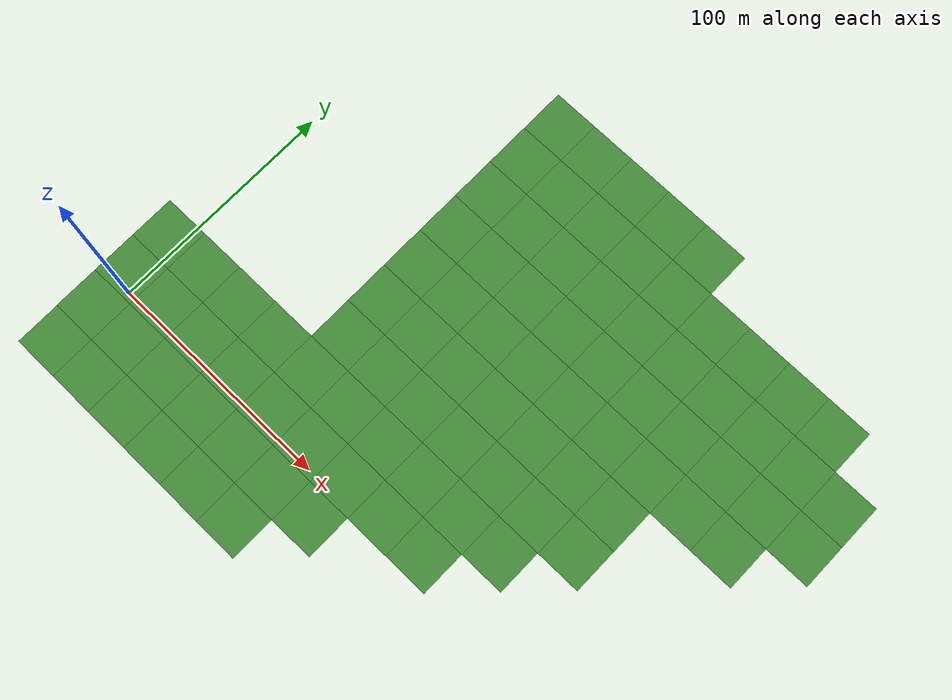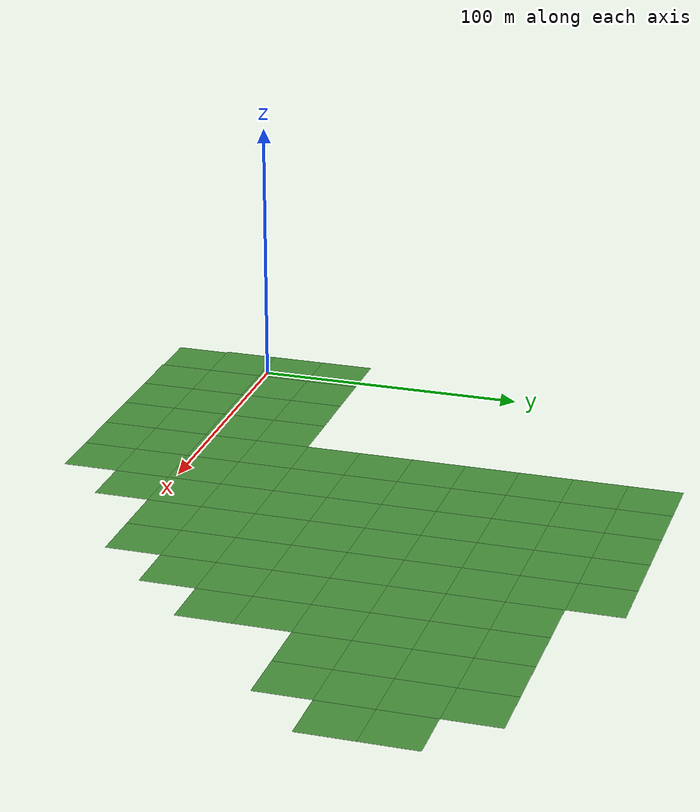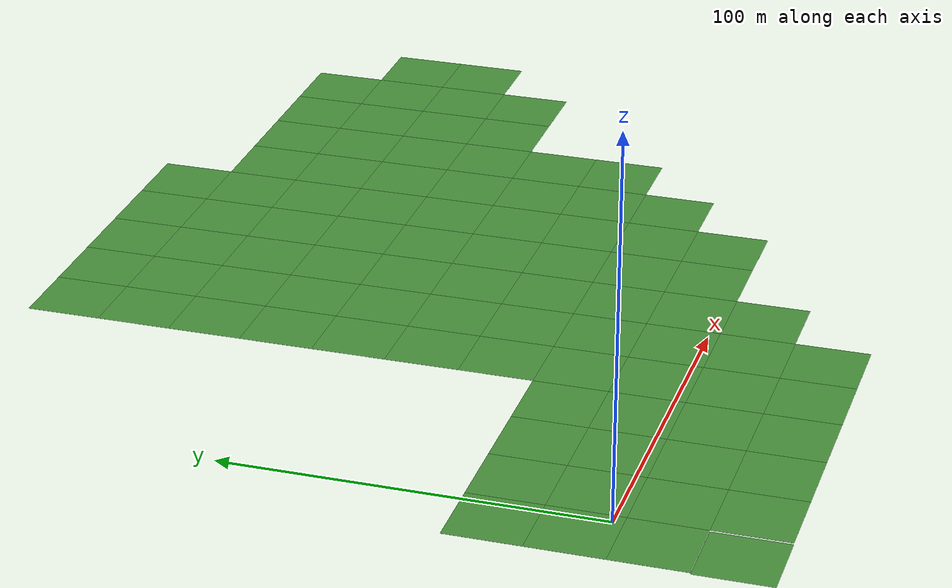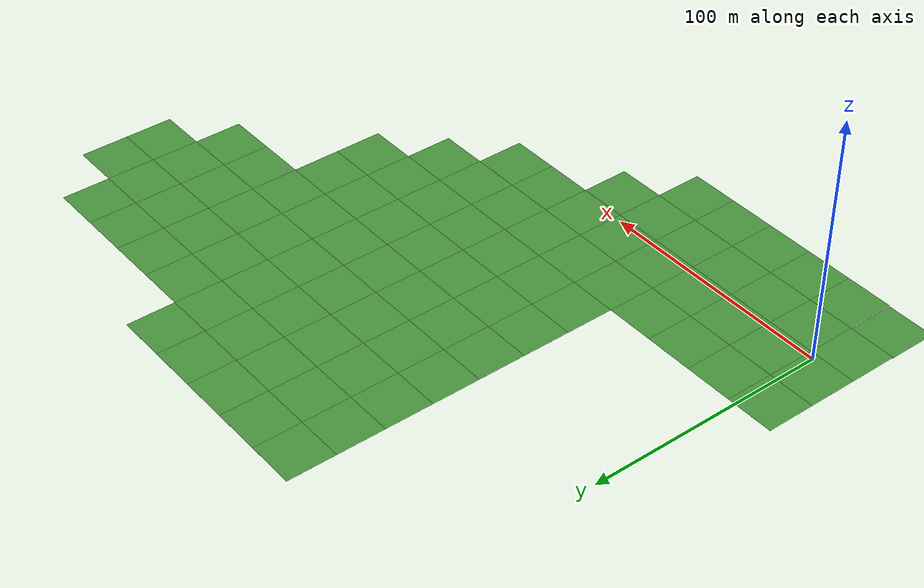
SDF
<sdf version="1.6">
 <world name="default">
  <model name="grass_plane_4">
   <static>1</static>
   <link name="link">
    <collision name="collision">
     <geometry><plane><normal>0 0 1</normal><size>500 500</size></plane></geometry>
     <surface><friction><ode><mu>0.5</mu><mu2>0.5</mu2></ode></friction></surface>
    </collision>
    <visual name="visual_0">
     <pose>-40 -40 0 0 -0 0</pose>
     <cast_shadows>0</cast_shadows>
     <geometry><plane><normal>0 0 1</normal><size>20 20</size></plane></geometry>
     <material>
      <script>
       <uri>model://grass_plane/materials/scripts</uri>
       <uri>model://grass_plane/materials/textures</uri>
       <name>vrc/grass</name>
      </script>
     </material>
    </visual>
    <visual name="visual_1">
     <pose>-20 -40 0 0 -0 0</pose>
     <cast_shadows>0</cast_shadows>
     <geometry><plane><normal>0 0 1</normal><size>20 20</size></plane></geometry>
     <material>
      <script>
       <uri>model://grass_plane/materials/scripts</uri>
       <uri>model://grass_plane/materials/textures</uri>
       <name>vrc/grass</name>
      </script>
     </material>
    </visual>
    <visual name="visual_2">
     <pose>0 -40 0 0 -0 0</pose>
     <cast_shadows>0</cast_shadows>
     <geometry><plane><normal>0 0 1</normal><size>20 20</size></plane></geometry>
     <material>
      <script>
       <uri>model://grass_plane/materials/scripts</uri>
       <uri>model://grass_plane/materials/textures</uri>
       <name>vrc/grass</name>
      </script>
     </material>
    </visual>
    <visual name="visual_3">
     <pose>20 -40 0 0 -0 0</pose>
     <cast_shadows>0</cast_shadows>
     <geometry><plane><normal>0 0 1</normal><size>20 20</size></plane></geometry>
     <material>
      <script>
       <uri>model://grass_plane/materials/scripts</uri>
       <uri>model://grass_plane/materials/textures</uri>
       <name>vrc/grass</name>
      </script>
     </material>
    </visual>
    <visual name="visual_4">
     <pose>40 -40 0 0 -0 0</pose>
     <cast_shadows>0</cast_shadows>
     <geometry><plane><normal>0 0 1</normal><size>20 20</size></plane></geometry>
     <material>
      <script>
       <uri>model://grass_plane/materials/scripts</uri>
       <uri>model://grass_plane/materials/textures</uri>
       <name>vrc/grass</name>
      </script>
     </material>
    </visual>
    <visual name="visual_5">
     <pose>60 -40 0 0 -0 0</pose>
     <cast_shadows>0</cast_shadows>
     <geometry><plane><normal>0 0 1</normal><size>20 20</size></plane></geometry>
     <material>
      <script>
       <uri>model://grass_plane/materials/scripts</uri>
       <uri>model://grass_plane/materials/textures</uri>
       <name>vrc/grass</name>
      </script>
     </material>
    </visual>
    <visual name="visual_6">
     <pose>-40 -20 0 0 -0 0</pose>
     <cast_shadows>0</cast_shadows>
     <geometry><plane><normal>0 0 1</normal><size>20 20</size></plane></geometry>
     <material>
      <script>
       <uri>model://grass_plane/materials/scripts</uri>
       <uri>model://grass_plane/materials/textures</uri>
       <name>vrc/grass</name>
      </script>
     </material>
    </visual>
    <visual name="visual_7">
     <pose>-20 -20 0 0 -0 0</pose>
     <cast_shadows>0</cast_shadows>
     <geometry><plane><normal>0 0 1</normal><size>20 20</size></plane></geometry>
     <material>
      <script>
       <uri>model://grass_plane/materials/scripts</uri>
       <uri>model://grass_plane/materials/textures</uri>
       <name>vrc/grass</name>
      </script>
     </material>
    </visual>
    <visual name="visual_8">
     <pose>0 -20 0 0 -0 0</pose>
     <cast_shadows>0</cast_shadows>
     <geometry><plane><normal>0 0 1</normal><size>20 20</size></plane></geometry>
     <material>
      <script>
       <uri>model://grass_plane/materials/scripts</uri>
       <uri>model://grass_plane/materials/textures</uri>
       <name>vrc/grass</name>
      </script>
     </material>
    </visual>
    <visual name="visual_9">
     <pose>20 -20 0 0 -0 0</pose>
     <cast_shadows>0</cast_shadows>
     <geometry><plane><normal>0 0 1</normal><size>20 20</size></plane></geometry>
     <material>
      <script>
       <uri>model://grass_plane/materials/scripts</uri>
       <uri>model://grass_plane/materials/textures</uri>
       <name>vrc/grass</name>
      </script>
     </material>
    </visual>
    <visual name="visual_10">
     <pose>40 -20 0 0 -0 0</pose>
     <cast_shadows>0</cast_shadows>
     <geometry><plane><normal>0 0 1</normal><size>20 20</size></plane></geometry>
     <material>
      <script>
       <uri>model://grass_plane/materials/scripts</uri>
       <uri>model://grass_plane/materials/textures</uri>
       <name>vrc/grass</name>
      </script>
     </material>
    </visual>
    <visual name="visual_11">
     <pose>60 -20 0 0 -0 0</pose>
     <cast_shadows>0</cast_shadows>
     <geometry><plane><normal>0 0 1</normal><size>20 20</size></plane></geometry>
     <material>
      <script>
       <uri>model://grass_plane/materials/scripts</uri>
       <uri>model://grass_plane/materials/textures</uri>
       <name>vrc/grass</name>
      </script>
     </material>
    </visual>
    <visual name="visual_12">
     <pose>80 -20 0 0 -0 0</pose>
     <cast_shadows>0</cast_shadows>
     <geometry><plane><normal>0 0 1</normal><size>20 20</size></plane></geometry>
     <material>
      <script>
       <uri>model://grass_plane/materials/scripts</uri>
       <uri>model://grass_plane/materials/textures</uri>
       <name>vrc/grass</name>
      </script>
     </material>
    </visual>
    <visual name="visual_13">
     <pose>-40 0 0 0 -0 0</pose>
     <cast_shadows>0</cast_shadows>
     <geometry><plane><normal>0 0 1</normal><size>20 20</size></plane></geometry>
     <material>
      <script>
       <uri>model://grass_plane/materials/scripts</uri>
       <uri>model://grass_plane/materials/textures</uri>
       <name>vrc/grass</name>
      </script>
     </material>
    </visual>
    <visual name="visual_14">
     <pose>-20 0 0 0 -0 0</pose>
     <cast_shadows>0</cast_shadows>
     <geometry><plane><normal>0 0 1</normal><size>20 20</size></plane></geometry>
     <material>
      <script>
       <uri>model://grass_plane/materials/scripts</uri>
       <uri>model://grass_plane/materials/textures</uri>
       <name>vrc/grass</name>
      </script>
     </material>
    </visual>
    <visual name="visual_15">
     <cast_shadows>0</cast_shadows>
     <geometry><plane><normal>0 0 1</normal><size>20 20</size></plane></geometry>
     <material>
      <script>
       <uri>model://grass_plane/materials/scripts</uri>
       <uri>model://grass_plane/materials/textures</uri>
       <name>vrc/grass</name>
      </script>
     </material>
    </visual>
    <visual name="visual_16">
     <pose>20 0 0 0 -0 0</pose>
     <cast_shadows>0</cast_shadows>
     <geometry><plane><normal>0 0 1</normal><size>20 20</size></plane></geometry>
     <material>
      <script>
       <uri>model://grass_plane/materials/scripts</uri>
       <uri>model://grass_plane/materials/textures</uri>
       <name>vrc/grass</name>
      </script>
     </material>
    </visual>
    <visual name="visual_17">
     <pose>40 0 0 0 -0 0</pose>
     <cast_shadows>0</cast_shadows>
     <geometry><plane><normal>0 0 1</normal><size>20 20</size></plane></geometry>
     <material>
      <script>
       <uri>model://grass_plane/materials/scripts</uri>
       <uri>model://grass_plane/materials/textures</uri>
       <name>vrc/grass</name>
      </script>
     </material>
    </visual>
    <visual name="visual_18">
     <pose>60 0 0 0 -0 0</pose>
     <cast_shadows>0</cast_shadows>
     <geometry><plane><normal>0 0 1</normal><size>20 20</size></plane></geometry>
     <material>
      <script>
       <uri>model://grass_plane/materials/scripts</uri>
       <uri>model://grass_plane/materials/textures</uri>
       <name>vrc/grass</name>
      </script>
     </material>
    </visual>
    <visual name="visual_19">
     <pose>80 0 0 0 -0 0</pose>
     <cast_shadows>0</cast_shadows>
     <geometry><plane><normal>0 0 1</normal><size>20 20</size></plane></geometry>
     <material>
      <script>
       <uri>model://grass_plane/materials/scripts</uri>
       <uri>model://grass_plane/materials/textures</uri>
       <name>vrc/grass</name>
      </script>
     </material>
    </visual>
    <visual name="visual_20">
     <pose>100 0 0 0 -0 0</pose>
     <cast_shadows>0</cast_shadows>
     <geometry><plane><normal>0 0 1</normal><size>20 20</size></plane></geometry>
     <material>
      <script>
       <uri>model://grass_plane/materials/scripts</uri>
       <uri>model://grass_plane/materials/textures</uri>
       <name>vrc/grass</name>
      </script>
     </material>
    </visual>
    <visual name="visual_21">
     <pose>120 0 0 0 -0 0</pose>
     <cast_shadows>0</cast_shadows>
     <geometry><plane><normal>0 0 1</normal><size>20 20</size></plane></geometry>
     <material>
      <script>
       <uri>model://grass_plane/materials/scripts</uri>
       <uri>model://grass_plane/materials/textures</uri>
       <name>vrc/grass</name>
      </script>
     </material>
    </visual>
    <visual name="visual_22">
     <pose>-40 20 0 0 -0 0</pose>
     <cast_shadows>0</cast_shadows>
     <geometry><plane><normal>0 0 1</normal><size>20 20</size></plane></geometry>
     <material>
      <script>
       <uri>model://grass_plane/materials/scripts</uri>
       <uri>model://grass_plane/materials/textures</uri>
       <name>vrc/grass</name>
      </script>
     </material>
    </visual>
    <visual name="visual_23">
     <pose>-20 20 0 0 -0 0</pose>
     <cast_shadows>0</cast_shadows>
     <geometry><plane><normal>0 0 1</normal><size>20 20</size></plane></geometry>
     <material>
      <script>
       <uri>model://grass_plane/materials/scripts</uri>
       <uri>model://grass_plane/materials/textures</uri>
       <name>vrc/grass</name>
      </script>
     </material>
    </visual>
    <visual name="visual_24">
     <pose>0 20 0 0 -0 0</pose>
     <cast_shadows>0</cast_shadows>
     <geometry><plane><normal>0 0 1</normal><size>20 20</size></plane></geometry>
     <material>
      <script>
       <uri>model://grass_plane/materials/scripts</uri>
       <uri>model://grass_plane/materials/textures</uri>
       <name>vrc/grass</name>
      </script>
     </material>
    </visual>
    <visual name="visual_25">
     <pose>20 20 0 0 -0 0</pose>
     <cast_shadows>0</cast_shadows>
     <geometry><plane><normal>0 0 1</normal><size>20 20</size></plane></geometry>
     <material>
      <script>
       <uri>model://grass_plane/materials/scripts</uri>
       <uri>model://grass_plane/materials/textures</uri>
       <name>vrc/grass</name>
      </script>
     </material>
    </visual>
    <visual name="visual_26">
     <pose>40 20 0 0 -0 0</pose>
     <cast_shadows>0</cast_shadows>
     <geometry><plane><normal>0 0 1</normal><size>20 20</size></plane></geometry>
     <material>
      <script>
       <uri>model://grass_plane/materials/scripts</uri>
       <uri>model://grass_plane/materials/textures</uri>
       <name>vrc/grass</name>
      </script>
     </material>
    </visual>
    <visual name="visual_27">
     <pose>60 20 0 0 -0 0</pose>
     <cast_shadows>0</cast_shadows>
     <geometry><plane><normal>0 0 1</normal><size>20 20</size></plane></geometry>
     <material>
      <script>
       <uri>model://grass_plane/materials/scripts</uri>
       <uri>model://grass_plane/materials/textures</uri>
       <name>vrc/grass</name>
      </script>
     </material>
    </visual>
    <visual name="visual_28">
     <pose>80 20 0 0 -0 0</pose>
     <cast_shadows>0</cast_shadows>
     <geometry><plane><normal>0 0 1</normal><size>20 20</size></plane></geometry>
     <material>
      <script>
       <uri>model://grass_plane/materials/scripts</uri>
       <uri>model://grass_plane/materials/textures</uri>
       <name>vrc/grass</name>
      </script>
     </material>
    </visual>
    <visual name="visual_29">
     <pose>100 20 0 0 -0 0</pose>
     <cast_shadows>0</cast_shadows>
     <geometry><plane><normal>0 0 1</normal><size>20 20</size></plane></geometry>
     <material>
      <script>
       <uri>model://grass_plane/materials/scripts</uri>
       <uri>model://grass_plane/materials/textures</uri>
       <name>vrc/grass</name>
      </script>
     </material>
    </visual>
    <visual name="visual_30">
     <pose>120 20 0 0 -0 0</pose>
     <cast_shadows>0</cast_shadows>
     <geometry><plane><normal>0 0 1</normal><size>20 20</size></plane></geometry>
     <material>
      <script>
       <uri>model://grass_plane/materials/scripts</uri>
       <uri>model://grass_plane/materials/textures</uri>
       <name>vrc/grass</name>
      </script>
     </material>
    </visual>
    <visual name="visual_31">
     <pose>140 20 0 0 -0 0</pose>
     <cast_shadows>0</cast_shadows>
     <geometry><plane><normal>0 0 1</normal><size>20 20</size></plane></geometry>
     <material>
      <script>
       <uri>model://grass_plane/materials/scripts</uri>
       <uri>model://grass_plane/materials/textures</uri>
       <name>vrc/grass</name>
      </script>
     </material>
    </visual>
    <visual name="visual_32">
     <pose>40 40 0 0 -0 0</pose>
     <cast_shadows>0</cast_shadows>
     <geometry><plane><normal>0 0 1</normal><size>20 20</size></plane></geometry>
     <material>
      <script>
       <uri>model://grass_plane/materials/scripts</uri>
       <uri>model://grass_plane/materials/textures</uri>
       <name>vrc/grass</name>
      </script>
     </material>
    </visual>
    <visual name="visual_33">
     <pose>60 40 0 0 -0 0</pose>
     <cast_shadows>0</cast_shadows>
     <geometry><plane><normal>0 0 1</normal><size>20 20</size></plane></geometry>
     <material>
      <script>
       <uri>model://grass_plane/materials/scripts</uri>
       <uri>model://grass_plane/materials/textures</uri>
       <name>vrc/grass</name>
      </script>
     </material>
    </visual>
    <visual name="visual_34">
     <pose>80 40 0 0 -0 0</pose>
     <cast_shadows>0</cast_shadows>
     <geometry><plane><normal>0 0 1</normal><size>20 20</size></plane></geometry>
     <material>
      <script>
       <uri>model://grass_plane/materials/scripts</uri>
       <uri>model://grass_plane/materials/textures</uri>
       <name>vrc/grass</name>
      </script>
     </material>
    </visual>
    <visual name="visual_35">
     <pose>100 40 0 0 -0 0</pose>
     <cast_shadows>0</cast_shadows>
     <geometry><plane><normal>0 0 1</normal><size>20 20</size></plane></geometry>
     <material>
      <script>
       <uri>model://grass_plane/materials/scripts</uri>
       <uri>model://grass_plane/materials/textures</uri>
       <name>vrc/grass</name>
      </script>
     </material>
    </visual>
    <visual name="visual_36">
     <pose>120 40 0 0 -0 0</pose>
     <cast_shadows>0</cast_shadows>
     <geometry><plane><normal>0 0 1</normal><size>20 20</size></plane></geometry>
     <material>
      <script>
       <uri>model://grass_plane/materials/scripts</uri>
       <uri>model://grass_plane/materials/textures</uri>
       <name>vrc/grass</name>
      </script>
     </material>
    </visual>
    <visual name="visual_37">
     <pose>140 40 0 0 -0 0</pose>
     <cast_shadows>0</cast_shadows>
     <geometry><plane><normal>0 0 1</normal><size>20 20</size></plane></geometry>
     <material>
      <script>
       <uri>model://grass_plane/materials/scripts</uri>
       <uri>model://grass_plane/materials/textures</uri>
       <name>vrc/grass</name>
      </script>
     </material>
    </visual>
    <visual name="visual_38">
     <pose>160 40 0 0 -0 0</pose>
     <cast_shadows>0</cast_shadows>
     <geometry><plane><normal>0 0 1</normal><size>20 20</size></plane></geometry>
     <material>
      <script>
       <uri>model://grass_plane/materials/scripts</uri>
       <uri>model://grass_plane/materials/textures</uri>
       <name>vrc/grass</name>
      </script>
     </material>
    </visual>
    <visual name="visual_39">
     <pose>40 60 0 0 -0 0</pose>
     <cast_shadows>0</cast_shadows>
     <geometry><plane><normal>0 0 1</normal><size>20 20</size></plane></geometry>
     <material>
      <script>
       <uri>model://grass_plane/materials/scripts</uri>
       <uri>model://grass_plane/materials/textures</uri>
       <name>vrc/grass</name>
      </script>
     </material>
    </visual>
    <visual name="visual_40">
     <pose>60 60 0 0 -0 0</pose>
     <cast_shadows>0</cast_shadows>
     <geometry><plane><normal>0 0 1</normal><size>20 20</size></plane></geometry>
     <material>
      <script>
       <uri>model://grass_plane/materials/scripts</uri>
       <uri>model://grass_plane/materials/textures</uri>
       <name>vrc/grass</name>
      </script>
     </material>
    </visual>
    <visual name="visual_41">
     <pose>80 60 0 0 -0 0</pose>
     <cast_shadows>0</cast_shadows>
     <geometry><plane><normal>0 0 1</normal><size>20 20</size></plane></geometry>
     <material>
      <script>
       <uri>model://grass_plane/materials/scripts</uri>
       <uri>model://grass_plane/materials/textures</uri>
       <name>vrc/grass</name>
      </script>
     </material>
    </visual>
    <visual name="visual_42">
     <pose>100 60 0 0 -0 0</pose>
     <cast_shadows>0</cast_shadows>
     <geometry><plane><normal>0 0 1</normal><size>20 20</size></plane></geometry>
     <material>
      <script>
       <uri>model://grass_plane/materials/scripts</uri>
       <uri>model://grass_plane/materials/textures</uri>
       <name>vrc/grass</name>
      </script>
     </material>
    </visual>
    <visual name="visual_43">
     <pose>120 60 0 0 -0 0</pose>
     <cast_shadows>0</cast_shadows>
     <geometry><plane><normal>0 0 1</normal><size>20 20</size></plane></geometry>
     <material>
      <script>
       <uri>model://grass_plane/materials/scripts</uri>
       <uri>model://grass_plane/materials/textures</uri>
       <name>vrc/grass</name>
      </script>
     </material>
    </visual>
    <visual name="visual_44">
     <pose>140 60 0 0 -0 0</pose>
     <cast_shadows>0</cast_shadows>
     <geometry><plane><normal>0 0 1</normal><size>20 20</size></plane></geometry>
     <material>
      <script>
       <uri>model://grass_plane/materials/scripts</uri>
       <uri>model://grass_plane/materials/textures</uri>
       <name>vrc/grass</name>
      </script>
     </material>
    </visual>
    <visual name="visual_45">
     <pose>160 60 0 0 -0 0</pose>
     <cast_shadows>0</cast_shadows>
     <geometry><plane><normal>0 0 1</normal><size>20 20</size></plane></geometry>
     <material>
      <script>
       <uri>model://grass_plane/materials/scripts</uri>
       <uri>model://grass_plane/materials/textures</uri>
       <name>vrc/grass</name>
      </script>
     </material>
    </visual>
    <visual name="visual_46">
     <pose>40 80 0 0 -0 0</pose>
     <cast_shadows>0</cast_shadows>
     <geometry><plane><normal>0 0 1</normal><size>20 20</size></plane></geometry>
     <material>
      <script>
       <uri>model://grass_plane/materials/scripts</uri>
       <uri>model://grass_plane/materials/textures</uri>
       <name>vrc/grass</name>
      </script>
     </material>
    </visual>
    <visual name="visual_47">
     <pose>60 80 0 0 -0 0</pose>
     <cast_shadows>0</cast_shadows>
     <geometry><plane><normal>0 0 1</normal><size>20 20</size></plane></geometry>
     <material>
      <script>
       <uri>model://grass_plane/materials/scripts</uri>
       <uri>model://grass_plane/materials/textures</uri>
       <name>vrc/grass</name>
      </script>
     </material>
    </visual>
    <visual name="visual_48">
     <pose>80 80 0 0 -0 0</pose>
     <cast_shadows>0</cast_shadows>
     <geometry><plane><normal>0 0 1</normal><size>20 20</size></plane></geometry>
     <material>
      <script>
       <uri>model://grass_plane/materials/scripts</uri>
       <uri>model://grass_plane/materials/textures</uri>
       <name>vrc/grass</name>
      </script>
     </material>
    </visual>
    <visual name="visual_49">
     <pose>100 80 0 0 -0 0</pose>
     <cast_shadows>0</cast_shadows>
     <geometry><plane><normal>0 0 1</normal><size>20 20</size></plane></geometry>
     <material>
      <script>
       <uri>model://grass_plane/materials/scripts</uri>
       <uri>model://grass_plane/materials/textures</uri>
       <name>vrc/grass</name>
      </script>
     </material>
    </visual>
    <visual name="visual_50">
     <pose>120 80 0 0 -0 0</pose>
     <cast_shadows>0</cast_shadows>
     <geometry><plane><normal>0 0 1</normal><size>20 20</size></plane></geometry>
     <material>
      <script>
       <uri>model://grass_plane/materials/scripts</uri>
       <uri>model://grass_plane/materials/textures</uri>
       <name>vrc/grass</name>
      </script>
     </material>
    </visual>
    <visual name="visual_51">
     <pose>140 80 0 0 -0 0</pose>
     <cast_shadows>0</cast_shadows>
     <geometry><plane><normal>0 0 1</normal><size>20 20</size></plane></geometry>
     <material>
      <script>
       <uri>model://grass_plane/materials/scripts</uri>
       <uri>model://grass_plane/materials/textures</uri>
       <name>vrc/grass</name>
      </script>
     </material>
    </visual>
    <visual name="visual_52">
     <pose>160 80 0 0 -0 0</pose>
     <cast_shadows>0</cast_shadows>
     <geometry><plane><normal>0 0 1</normal><size>20 20</size></plane></geometry>
     <material>
      <script>
       <uri>model://grass_plane/materials/scripts</uri>
       <uri>model://grass_plane/materials/textures</uri>
       <name>vrc/grass</name>
      </script>
     </material>
    </visual>
    <visual name="visual_53">
     <pose>180 80 0 0 -0 0</pose>
     <cast_shadows>0</cast_shadows>
     <geometry><plane><normal>0 0 1</normal><size>20 20</size></plane></geometry>
     <material>
      <script>
       <uri>model://grass_plane/materials/scripts</uri>
       <uri>model://grass_plane/materials/textures</uri>
       <name>vrc/grass</name>
      </script>
     </material>
    </visual>
    <visual name="visual_54">
     <pose>200 80 0 0 -0 0</pose>
     <cast_shadows>0</cast_shadows>
     <geometry><plane><normal>0 0 1</normal><size>20 20</size></plane></geometry>
     <material>
      <script>
       <uri>model://grass_plane/materials/scripts</uri>
       <uri>model://grass_plane/materials/textures</uri>
       <name>vrc/grass</name>
      </script>
     </material>
    </visual>
    <visual name="visual_55">
     <pose>40 100 0 0 -0 0</pose>
     <cast_shadows>0</cast_shadows>
     <geometry><plane><normal>0 0 1</normal><size>20 20</size></plane></geometry>
     <material>
      <script>
       <uri>model://grass_plane/materials/scripts</uri>
       <uri>model://grass_plane/materials/textures</uri>
       <name>vrc/grass</name>
      </script>
     </material>
    </visual>
    <visual name="visual_56">
     <pose>60 100 0 0 -0 0</pose>
     <cast_shadows>0</cast_shadows>
     <geometry><plane><normal>0 0 1</normal><size>20 20</size></plane></geometry>
     <material>
      <script>
       <uri>model://grass_plane/materials/scripts</uri>
       <uri>model://grass_plane/materials/textures</uri>
       <name>vrc/grass</name>
      </script>
     </material>
    </visual>
    <visual name="visual_57">
     <pose>80 100 0 0 -0 0</pose>
     <cast_shadows>0</cast_shadows>
     <geometry><plane><normal>0 0 1</normal><size>20 20</size></plane></geometry>
     <material>
      <script>
       <uri>model://grass_plane/materials/scripts</uri>
       <uri>model://grass_plane/materials/textures</uri>
       <name>vrc/grass</name>
      </script>
     </material>
    </visual>
    <visual name="visual_58">
     <pose>100 100 0 0 -0 0</pose>
     <cast_shadows>0</cast_shadows>
     <geometry><plane><normal>0 0 1</normal><size>20 20</size></plane></geometry>
     <material>
      <script>
       <uri>model://grass_plane/materials/scripts</uri>
       <uri>model://grass_plane/materials/textures</uri>
       <name>vrc/grass</name>
      </script>
     </material>
    </visual>
    <visual name="visual_59">
     <pose>120 100 0 0 -0 0</pose>
     <cast_shadows>0</cast_shadows>
     <geometry><plane><normal>0 0 1</normal><size>20 20</size></plane></geometry>
     <material>
      <script>
       <uri>model://grass_plane/materials/scripts</uri>
       <uri>model://grass_plane/materials/textures</uri>
       <name>vrc/grass</name>
      </script>
     </material>
    </visual>
    <visual name="visual_60">
     <pose>140 100 0 0 -0 0</pose>
     <cast_shadows>0</cast_shadows>
     <geometry><plane><normal>0 0 1</normal><size>20 20</size></plane></geometry>
     <material>
      <script>
       <uri>model://grass_plane/materials/scripts</uri>
       <uri>model://grass_plane/materials/textures</uri>
       <name>vrc/grass</name>
      </script>
     </material>
    </visual>
    <visual name="visual_61">
     <pose>160 100 0 0 -0 0</pose>
     <cast_shadows>0</cast_shadows>
     <geometry><plane><normal>0 0 1</normal><size>20 20</size></plane></geometry>
     <material>
      <script>
       <uri>model://grass_plane/materials/scripts</uri>
       <uri>model://grass_plane/materials/textures</uri>
       <name>vrc/grass</name>
      </script>
     </material>
    </visual>
    <visual name="visual_62">
     <pose>180 100 0 0 -0 0</pose>
     <cast_shadows>0</cast_shadows>
     <geometry><plane><normal>0 0 1</normal><size>20 20</size></plane></geometry>
     <material>
      <script>
       <uri>model://grass_plane/materials/scripts</uri>
       <uri>model://grass_plane/materials/textures</uri>
       <name>vrc/grass</name>
      </script>
     </material>
    </visual>
    <visual name="visual_63">
     <pose>200 100 0 0 -0 0</pose>
     <cast_shadows>0</cast_shadows>
     <geometry><plane><normal>0 0 1</normal><size>20 20</size></plane></geometry>
     <material>
      <script>
       <uri>model://grass_plane/materials/scripts</uri>
       <uri>model://grass_plane/materials/textures</uri>
       <name>vrc/grass</name>
      </script>
     </material>
    </visual>
    <visual name="visual_63a">
     <pose>220 100 0 0 -0 0</pose>
     <cast_shadows>0</cast_shadows>
     <geometry><plane><normal>0 0 1</normal><size>20 20</size></plane></geometry>
     <material>
      <script>
       <uri>model://grass_plane/materials/scripts</uri>
       <uri>model://grass_plane/materials/textures</uri>
       <name>vrc/grass</name>
      </script>
     </material>
    </visual>
    <visual name="visual_64">
     <pose>40 120 0 0 -0 0</pose>
     <cast_shadows>0</cast_shadows>
     <geometry><plane><normal>0 0 1</normal><size>20 20</size></plane></geometry>
     <material>
      <script>
       <uri>model://grass_plane/materials/scripts</uri>
       <uri>model://grass_plane/materials/textures</uri>
       <name>vrc/grass</name>
      </script>
     </material>
    </visual>
    <visual name="visual_65">
     <pose>60 120 0 0 -0 0</pose>
     <cast_shadows>0</cast_shadows>
     <geometry><plane><normal>0 0 1</normal><size>20 20</size></plane></geometry>
     <material>
      <script>
       <uri>model://grass_plane/materials/scripts</uri>
       <uri>model://grass_plane/materials/textures</uri>
       <name>vrc/grass</name>
      </script>
     </material>
    </visual>
    <visual name="visual_66">
     <pose>80 120 0 0 -0 0</pose>
     <cast_shadows>0</cast_shadows>
     <geometry><plane><normal>0 0 1</normal><size>20 20</size></plane></geometry>
     <material>
      <script>
       <uri>model://grass_plane/materials/scripts</uri>
       <uri>model://grass_plane/materials/textures</uri>
       <name>vrc/grass</name>
      </script>
     </material>
    </visual>
    <visual name="visual_67">
     <pose>100 120 0 0 -0 0</pose>
     <cast_shadows>0</cast_shadows>
     <geometry><plane><normal>0 0 1</normal><size>20 20</size></plane></geometry>
     <material>
      <script>
       <uri>model://grass_plane/materials/scripts</uri>
       <uri>model://grass_plane/materials/textures</uri>
       <name>vrc/grass</name>
      </script>
     </material>
    </visual>
    <visual name="visual_68">
     <pose>120 120 0 0 -0 0</pose>
     <cast_shadows>0</cast_shadows>
     <geometry><plane><normal>0 0 1</normal><size>20 20</size></plane></geometry>
     <material>
      <script>
       <uri>model://grass_plane/materials/scripts</uri>
       <uri>model://grass_plane/materials/textures</uri>
       <name>vrc/grass</name>
      </script>
     </material>
    </visual>
    <visual name="visual_69">
     <pose>140 120 0 0 -0 0</pose>
     <cast_shadows>0</cast_shadows>
     <geometry><plane><normal>0 0 1</normal><size>20 20</size></plane></geometry>
     <material>
      <script>
       <uri>model://grass_plane/materials/scripts</uri>
       <uri>model://grass_plane/materials/textures</uri>
       <name>vrc/grass</name>
      </script>
     </material>
    </visual>
    <visual name="visual_70">
     <pose>160 120 0 0 -0 0</pose>
     <cast_shadows>0</cast_shadows>
     <geometry><plane><normal>0 0 1</normal><size>20 20</size></plane></geometry>
     <material>
      <script>
       <uri>model://grass_plane/materials/scripts</uri>
       <uri>model://grass_plane/materials/textures</uri>
       <name>vrc/grass</name>
      </script>
     </material>
    </visual>
    <visual name="visual_71">
     <pose>180 120 0 0 -0 0</pose>
     <cast_shadows>0</cast_shadows>
     <geometry><plane><normal>0 0 1</normal><size>20 20</size></plane></geometry>
     <material>
      <script>
       <uri>model://grass_plane/materials/scripts</uri>
       <uri>model://grass_plane/materials/textures</uri>
       <name>vrc/grass</name>
      </script>
     </material>
    </visual>
    <visual name="visual_72">
     <pose>200 120 0 0 -0 0</pose>
     <cast_shadows>0</cast_shadows>
     <geometry><plane><normal>0 0 1</normal><size>20 20</size></plane></geometry>
     <material>
      <script>
       <uri>model://grass_plane/materials/scripts</uri>
       <uri>model://grass_plane/materials/textures</uri>
       <name>vrc/grass</name>
      </script>
     </material>
    </visual>
    <visual name="visual_72a">
     <pose>220 120 0 0 -0 0</pose>
     <cast_shadows>0</cast_shadows>
     <geometry><plane><normal>0 0 1</normal><size>20 20</size></plane></geometry>
     <material>
      <script>
       <uri>model://grass_plane/materials/scripts</uri>
       <uri>model://grass_plane/materials/textures</uri>
       <name>vrc/grass</name>
      </script>
     </material>
    </visual>
    <visual name="visual_73">
     <pose>40 140 0 0 -0 0</pose>
     <cast_shadows>0</cast_shadows>
     <geometry><plane><normal>0 0 1</normal><size>20 20</size></plane></geometry>
     <material>
      <script>
       <uri>model://grass_plane/materials/scripts</uri>
       <uri>model://grass_plane/materials/textures</uri>
       <name>vrc/grass</name>
      </script>
     </material>
    </visual>
    <visual name="visual_74">
     <pose>60 140 0 0 -0 0</pose>
     <cast_shadows>0</cast_shadows>
     <geometry><plane><normal>0 0 1</normal><size>20 20</size></plane></geometry>
     <material>
      <script>
       <uri>model://grass_plane/materials/scripts</uri>
       <uri>model://grass_plane/materials/textures</uri>
       <name>vrc/grass</name>
      </script>
     </material>
    </visual>
    <visual name="visual_75">
     <pose>80 140 0 0 -0 0</pose>
     <cast_shadows>0</cast_shadows>
     <geometry><plane><normal>0 0 1</normal><size>20 20</size></plane></geometry>
     <material>
      <script>
       <uri>model://grass_plane/materials/scripts</uri>
       <uri>model://grass_plane/materials/textures</uri>
       <name>vrc/grass</name>
      </script>
     </material>
    </visual>
    <visual name="visual_76">
     <pose>100 140 0 0 -0 0</pose>
     <cast_shadows>0</cast_shadows>
     <geometry><plane><normal>0 0 1</normal><size>20 20</size></plane></geometry>
     <material>
      <script>
       <uri>model://grass_plane/materials/scripts</uri>
       <uri>model://grass_plane/materials/textures</uri>
       <name>vrc/grass</name>
      </script>
     </material>
    </visual>
    <visual name="visual_77">
     <pose>120 140 0 0 -0 0</pose>
     <cast_shadows>0</cast_shadows>
     <geometry><plane><normal>0 0 1</normal><size>20 20</size></plane></geometry>
     <material>
      <script>
       <uri>model://grass_plane/materials/scripts</uri>
       <uri>model://grass_plane/materials/textures</uri>
       <name>vrc/grass</name>
      </script>
     </material>
    </visual>
    <visual name="visual_78">
     <pose>140 140 0 0 -0 0</pose>
     <cast_shadows>0</cast_shadows>
     <geometry><plane><normal>0 0 1</normal><size>20 20</size></plane></geometry>
     <material>
      <script>
       <uri>model://grass_plane/materials/scripts</uri>
       <uri>model://grass_plane/materials/textures</uri>
       <name>vrc/grass</name>
      </script>
     </material>
    </visual>
    <visual name="visual_79">
     <pose>160 140 0 0 -0 0</pose>
     <cast_shadows>0</cast_shadows>
     <geometry><plane><normal>0 0 1</normal><size>20 20</size></plane></geometry>
     <material>
      <script>
       <uri>model://grass_plane/materials/scripts</uri>
       <uri>model://grass_plane/materials/textures</uri>
       <name>vrc/grass</name>
      </script>
     </material>
    </visual>
    <visual name="visual_80">
     <pose>180 140 0 0 -0 0</pose>
     <cast_shadows>0</cast_shadows>
     <geometry><plane><normal>0 0 1</normal><size>20 20</size></plane></geometry>
     <material>
      <script>
       <uri>model://grass_plane/materials/scripts</uri>
       <uri>model://grass_plane/materials/textures</uri>
       <name>vrc/grass</name>
      </script>
     </material>
    </visual>
    <visual name="visual_81">
     <pose>200 140 0 0 -0 0</pose>
     <cast_shadows>0</cast_shadows>
     <geometry><plane><normal>0 0 1</normal><size>20 20</size></plane></geometry>
     <material>
      <script>
       <uri>model://grass_plane/materials/scripts</uri>
       <uri>model://grass_plane/materials/textures</uri>
       <name>vrc/grass</name>
      </script>
     </material>
    </visual>
    <visual name="visual_82">
     <pose>40 160 0 0 -0 0</pose>
     <cast_shadows>0</cast_shadows>
     <geometry><plane><normal>0 0 1</normal><size>20 20</size></plane></geometry>
     <material>
      <script>
       <uri>model://grass_plane/materials/scripts</uri>
       <uri>model://grass_plane/materials/textures</uri>
       <name>vrc/grass</name>
      </script>
     </material>
    </visual>
    <visual name="visual_83">
     <pose>60 160 0 0 -0 0</pose>
     <cast_shadows>0</cast_shadows>
     <geometry><plane><normal>0 0 1</normal><size>20 20</size></plane></geometry>
     <material>
      <script>
       <uri>model://grass_plane/materials/scripts</uri>
       <uri>model://grass_plane/materials/textures</uri>
       <name>vrc/grass</name>
      </script>
     </material>
    </visual>
    <visual name="visual_84">
     <pose>80 160 0 0 -0 0</pose>
     <cast_shadows>0</cast_shadows>
     <geometry><plane><normal>0 0 1</normal><size>20 20</size></plane></geometry>
     <material>
      <script>
       <uri>model://grass_plane/materials/scripts</uri>
       <uri>model://grass_plane/materials/textures</uri>
       <name>vrc/grass</name>
      </script>
     </material>
    </visual>
    <visual name="visual_85">
     <pose>100 160 0 0 -0 0</pose>
     <cast_shadows>0</cast_shadows>
     <geometry><plane><normal>0 0 1</normal><size>20 20</size></plane></geometry>
     <material>
      <script>
       <uri>model://grass_plane/materials/scripts</uri>
       <uri>model://grass_plane/materials/textures</uri>
       <name>vrc/grass</name>
      </script>
     </material>
    </visual>
    <visual name="visual_86">
     <pose>120 160 0 0 -0 0</pose>
     <cast_shadows>0</cast_shadows>
     <geometry><plane><normal>0 0 1</normal><size>20 20</size></plane></geometry>
     <material>
      <script>
       <uri>model://grass_plane/materials/scripts</uri>
       <uri>model://grass_plane/materials/textures</uri>
       <name>vrc/grass</name>
      </script>
     </material>
    </visual>
   </link>
   <pose>33.1924 7.33168 0 0 -0 0</pose>
  </model>
 </world>
</sdf>
